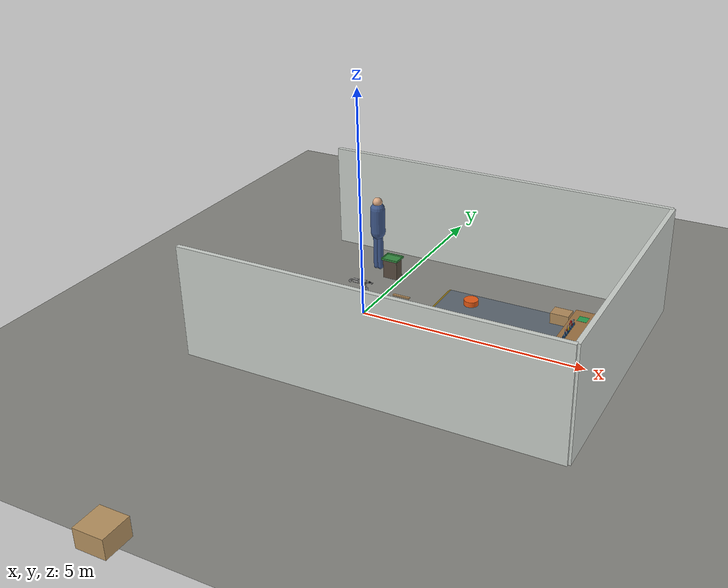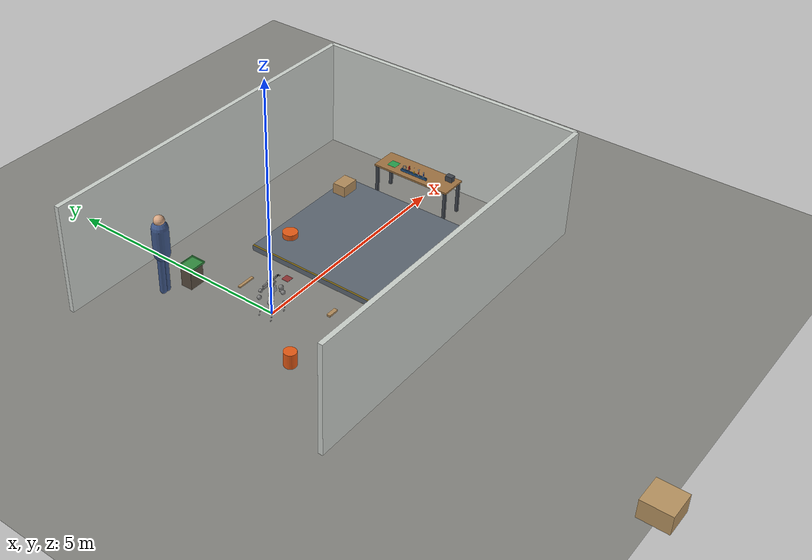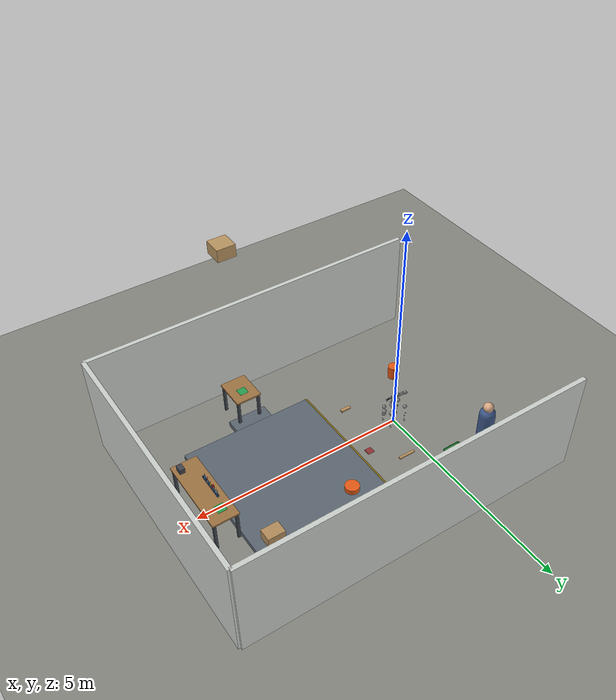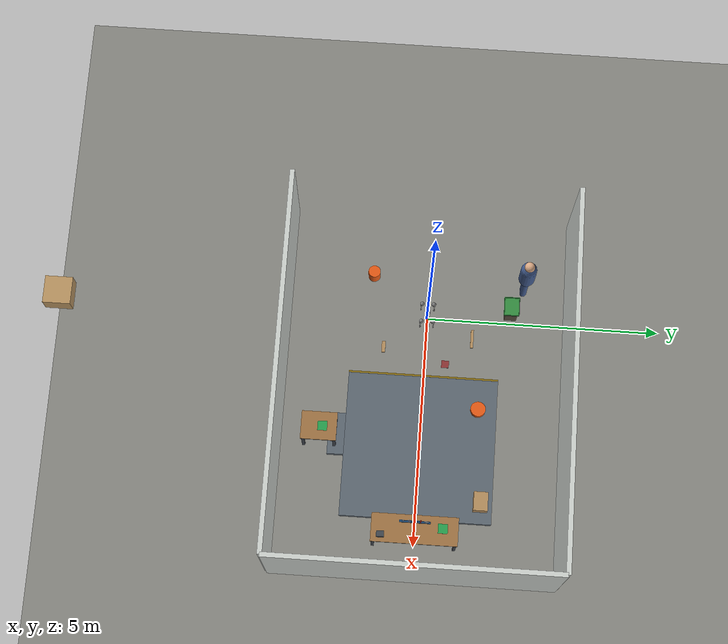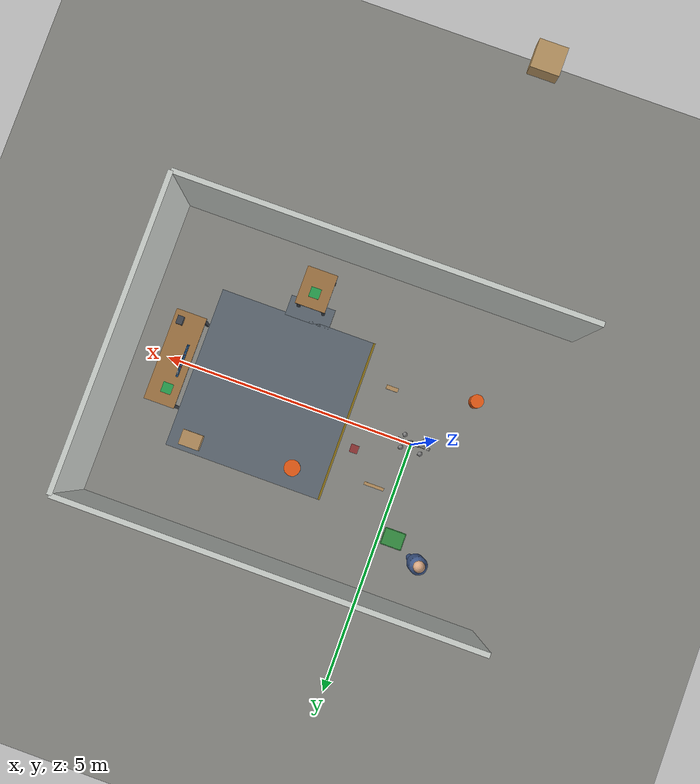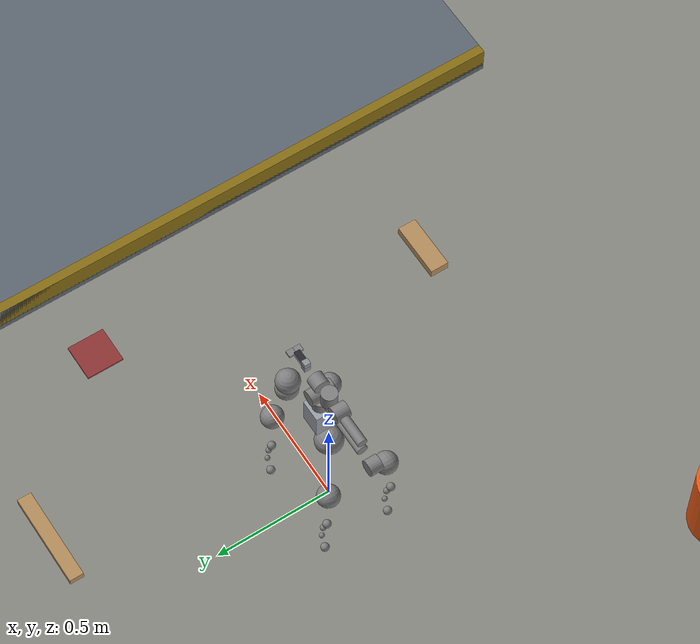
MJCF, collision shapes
<mujoco model="bring-me-the-10mm-wrench workshop">
  <!-- GENERATED by bw/sim/workshop.py -- edit that file, not this one. -->
  <include file="go2z1_scene_robot.xml"/>

  <option timestep="0.001" iterations="50" ls_iterations="20" impratio="10" cone="pyramidal"
          noslip_iterations="0"/>

  <statistic center="2.2 0 0.4" extent="4.0"/>
  <visual>
    <headlight diffuse="0.35 0.35 0.35" ambient="0.25 0.25 0.25" specular="0 0 0"/>
    <global azimuth="-150" elevation="-25" offwidth="1920" offheight="1080"/>
    <quality shadowsize="4096"/>
  </visual>

  <asset>
    <texture name="concrete" type="2d" builtin="flat" rgb1="0.52 0.52 0.50" rgb2="0.45 0.45 0.44" mark="random" random="0.08" markrgb="0.38 0.38 0.37" width="512" height="512"/>
    <material name="concrete" texture="concrete" texrepeat="6 6" texuniform="true" reflectance="0.05"/>
    <texture name="hazard" type="2d" builtin="checker" rgb1="0.95 0.75 0.05" rgb2="0.1 0.1 0.1" width="64" height="64"/>
    <material name="hazard" texture="hazard" texrepeat="12 1" texuniform="false"/>
    <material name="walkway" rgba="0.36 0.40 0.44 1" reflectance="0.02"/>
    <material name="bench" rgba="0.62 0.45 0.26 1"/>
    <material name="benchleg" rgba="0.25 0.27 0.30 1"/>
    <material name="tray" rgba="0.15 0.35 0.55 1"/>
    <material name="tray_rib" rgba="0.12 0.26 0.40 1"/>
    <material name="chrome" rgba="0.78 0.79 0.82 1" specular="0.8" shininess="0.9" reflectance="0.15"/>
    <material name="steel" rgba="0.45 0.46 0.5 1" specular="0.6"/>
    <material name="tape" rgba="0.62 0.64 0.66 1"/>
    <material name="wood" rgba="0.70 0.55 0.36 1"/>
    <material name="bucket" rgba="0.9 0.35 0.08 1"/>
    <material name="rag" rgba="0.55 0.2 0.2 1"/>
    <material name="wall" rgba="0.80 0.82 0.80 1"/>
    <material name="human" rgba="0.25 0.35 0.55 1"/>
    <material name="skin" rgba="0.85 0.66 0.52 1"/>
    <material name="box" rgba="0.72 0.58 0.38 1"/>
    <material name="zone" rgba="0.15 0.62 0.30 1"/>
  </asset>

  <worldbody>
    <light name="key" pos="2 -1 4" dir="0.1 0.2 -1" diffuse="0.7 0.7 0.68" castshadow="true"/>
    <light name="fill" pos="-1 2 3" dir="0.3 -0.3 -1" diffuse="0.35 0.35 0.38" castshadow="false"/>
    <light name="bench_lamp" pos="4.7 0 1.9" dir="0 0 -1" diffuse="0.45 0.43 0.38" castshadow="false"/>

    <geom name="floor" type="plane" size="8 8 0.05" pos="1.5 0 0" material="concrete" condim="3"
      friction="0.8 0.02 0.01" contype="7" conaffinity="7"/>
    <geom name="wall_back" type="box" size="0.05 3 1.2" pos="5.7 0 1.2" material="wall" contype="7" conaffinity="7"/>
    <geom name="wall_left" type="box" size="4 0.05 1.2" pos="1.7 3.0 1.2" material="wall" contype="7" conaffinity="7"/>
    <geom name="wall_right" type="box" size="4 0.05 1.2" pos="1.7 -3.0 1.2" material="wall" contype="7" conaffinity="7"/>

    <!-- 12 cm raised walkway: the one step -->
    <geom name="walkway" type="box" size="1.575 1.600 0.060"
      pos="2.875 0.000 0.060" material="walkway" condim="3"
      friction="0.8 0.02 0.01" contype="7" conaffinity="7"/>
    <geom name="walkway_edge" type="box" size="0.02 1.600 0.0605"
      pos="1.320 0.000 0.060" material="hazard" contype="0" conaffinity="0"/>
    <geom name="walkway_spur_b" type="box" size="0.450 0.200 0.060"
      pos="2.700 -1.750 0.060" material="walkway" condim="3"
      friction="0.8 0.02 0.01" contype="7" conaffinity="7"/>

    <!-- bench -->
    <body name="bench" pos="4.750 0.000 0">
      <geom name="bench_top" type="box" size="0.300 0.900 0.02" pos="0 0 0.730" material="bench" contype="7" conaffinity="7"/>
      <geom type="box" size="0.03 0.03 0.355" pos="0.250 0.850 0.355" material="benchleg" contype="7" conaffinity="7"/>
      <geom type="box" size="0.03 0.03 0.355" pos="0.250 -0.850 0.355" material="benchleg" contype="7" conaffinity="7"/>
      <geom type="box" size="0.03 0.03 0.355" pos="-0.250 0.850 0.355" material="benchleg" contype="7" conaffinity="7"/>
      <geom type="box" size="0.03 0.03 0.355" pos="-0.250 -0.850 0.355" material="benchleg" contype="7" conaffinity="7"/>
      <geom name="vise" type="box" size="0.06 0.08 0.06" pos="0.15 -0.7 0.810" material="benchleg" contype="7" conaffinity="7"/>
    </body>

    <!-- bench-top tool rack: tools stand in slots, grasped horizontally -->
    <body name="rack" pos="4.6 0.0 0.75">
      <geom name="rack_base" type="box" size="0.02 0.32 0.0025" pos="0 0 0.0025" material="tray" contype="7" conaffinity="7"/>
      <geom name="rack_front" type="box" size="0.0025 0.32 0.0225" pos="-0.017499999999999998 0 0.0275" material="tray" contype="3" conaffinity="3"/>
      <geom name="rack_back" type="box" size="0.0025 0.32 0.0225" pos="0.017499999999999998 0 0.0275" material="tray" contype="3" conaffinity="3"/>
      <geom name="divider0" type="box" size="0.02 0.0025 0.0225" pos="0 -0.300 0.0275" material="tray_rib" contype="3" conaffinity="3"/>
      <geom name="divider1" type="box" size="0.02 0.0025 0.0225" pos="0 -0.180 0.0275" material="tray_rib" contype="3" conaffinity="3"/>
      <geom name="divider2" type="box" size="0.02 0.0025 0.0225" pos="0 -0.060 0.0275" material="tray_rib" contype="3" conaffinity="3"/>
      <geom name="divider3" type="box" size="0.02 0.0025 0.0225" pos="0 0.060 0.0275" material="tray_rib" contype="3" conaffinity="3"/>
      <geom name="divider4" type="box" size="0.02 0.0025 0.0225" pos="0 0.180 0.0275" material="tray_rib" contype="3" conaffinity="3"/>
      <geom name="divider5" type="box" size="0.02 0.0025 0.0225" pos="0 0.300 0.0275" material="tray_rib" contype="3" conaffinity="3"/>
      <site name="tray_center" pos="0 0 0.05" size="0.01" group="4"/>
    </body>

    <!-- table B: the transfer destination. Bare top, no rack (see TABLE_B_* in workshop.py) -->
    <body name="table_b" pos="2.700 -2.125 0">
      <geom name="table_b_top" type="box" size="0.300 0.375 0.02" pos="0 0 0.730" material="bench" contype="7" conaffinity="7"/>
      <geom type="box" size="0.03 0.03 0.355" pos="0.250 0.325 0.355" material="benchleg" contype="7" conaffinity="7"/>
      <geom type="box" size="0.03 0.03 0.355" pos="0.250 -0.325 0.355" material="benchleg" contype="7" conaffinity="7"/>
      <geom type="box" size="0.03 0.03 0.355" pos="-0.250 0.325 0.355" material="benchleg" contype="7" conaffinity="7"/>
      <geom type="box" size="0.03 0.03 0.355" pos="-0.250 -0.325 0.355" material="benchleg" contype="7" conaffinity="7"/>
    </body>

    <!-- painted place zones: visual only (contype 0), so the place skill never fights a lip -->
    <geom name="zone_table_a" type="box" size="0.1 0.1 0.0012"
      pos="4.700 0.580 0.7512"
      material="zone" contype="0" conaffinity="0"/>
    <geom name="zone_table_b" type="box" size="0.1 0.1 0.0012"
      pos="2.700 -2.050 0.7512"
      material="zone" contype="0" conaffinity="0"/>
    <site name="zone_table_a_center" pos="4.700 0.580 0.750" size="0.01" group="4"/>
    <site name="zone_table_b_center" pos="2.700 -2.050 0.750" size="0.01" group="4"/>

    <!-- handoff: a low tray on the floor in front of the human -->
    <body name="handoff_stand" pos="-0.25 1.8 0">
      <geom type="box" size="0.17 0.13 0.223" pos="0 0 0.223" rgba="0.35 0.3 0.25 1" contype="7" conaffinity="7"/>
    </body>
    <body name="handoff" pos="-0.25 1.8 0.45">
      <geom name="handoff_floor" type="box" size="0.2 0.16 0.004" pos="0 0 0.004" rgba="0.2 0.55 0.25 1" contype="7" conaffinity="7"/>
      <geom type="box" size="0.2 0.006 0.02" pos="0 0.16 0.02" rgba="0.2 0.55 0.25 1" contype="7" conaffinity="7"/>
      <geom type="box" size="0.2 0.006 0.02" pos="0 -0.16 0.02" rgba="0.2 0.55 0.25 1" contype="7" conaffinity="7"/>
      <geom type="box" size="0.006 0.16 0.02" pos="0.2 0 0.02" rgba="0.2 0.55 0.25 1" contype="7" conaffinity="7"/>
      <geom type="box" size="0.006 0.16 0.02" pos="-0.2 0 0.02" rgba="0.2 0.55 0.25 1" contype="7" conaffinity="7"/>
      <site name="handoff_center" pos="0 0 0.01" size="0.01" group="4"/>
    </body>

    <!-- the human (static mannequin) -->
    <body name="human" pos="-0.75 2.05 0">
      <geom type="capsule" size="0.07 0.4" pos="0.05 0 0.45" material="human" contype="7" conaffinity="7"/>
      <geom type="capsule" size="0.07 0.4" pos="-0.05 0 0.45" material="human" contype="0" conaffinity="0"/>
      <geom type="capsule" size="0.17 0.28" pos="0 0 1.2" material="human" contype="7" conaffinity="7"/>
      <geom type="sphere" size="0.11" pos="0 0 1.66" material="skin" contype="0" conaffinity="0"/>
    </body>

    <!-- scenario 3: an obstacle box, parked until a scenario moves it -->
    <body name="obstacle" mocap="true" pos="0.0 -8.0 0.2">
      <geom name="obstacle_geom" type="box" size="0.3 0.3 0.2" material="box" contype="7" conaffinity="7"/>
    </body>

    <geom name="offcut_a" type="box" size="0.12 0.04 0.02" pos="0.7 -0.9 0.02" material="wood" contype="7" conaffinity="7"/>
    <geom name="offcut_b" type="box" size="0.20 0.03 0.015" pos="0.4 1.0 0.015" material="wood" contype="7" conaffinity="7"/>
    <geom name="bucket" type="cylinder" size="0.13 0.16" pos="-0.9 -1.2 0.16" material="bucket" contype="7" conaffinity="7"/>
    <geom name="reel" type="cylinder" size="0.16 0.06" pos="2.0 1.2 0.18" material="bucket" contype="7" conaffinity="7"/>
    <geom name="crate" type="box" size="0.2 0.15 0.12" pos="4.0 1.35 0.24" material="wood" contype="7" conaffinity="7"/>
    <geom name="rag" type="box" size="0.08 0.08 0.004" pos="1.0 0.45 0.004" material="rag" contype="7" conaffinity="7"/>

    <camera name="overview" pos="-1.4 -3.2 2.6" xyaxes="0.85 -0.53 0 0.28 0.45 0.85"/>
    <camera name="bench_view" pos="3.2 -1.6 1.5" xyaxes="0.62 -0.78 0 0.35 0.28 0.89"/>
    <!-- both INSIDE the room: wall_right sits at y = -3.0, so a camera beyond it sees a wall -->
    <camera name="table_b_view" pos="4.00 -2.80 1.50" xyaxes="0.476 0.774 0 -0.354 0.218 0.906"/>
    <camera name="scene_wide" pos="0.50 -2.75 2.60" xyaxes="0.545 -0.839 0 0.425 0.276 0.865"/>

    <body name="wrench_10mm" pos="4.6000 -0.2400 0.8550" quat="0.7071 0.0 0.7071 0.0">
      <freejoint name="wrench_10mm_free"/>
      <geom name="wrench_10mm_handle" type="box" size="0.052000000000000005 0.0065 0.004" material="chrome" mass="0.0270" contype="3" conaffinity="3" condim="6" friction="1.2 0.05 0.005" solref="0.003 1" solimp="0.99 0.9995 0.0005 0.5 2"/>
      <geom name="wrench_10mm_grip" type="box" size="0.0234 0.0077 0.0048" rgba="0.12 0.30 0.80 1" mass="0.0001" contype="0" conaffinity="0"/>
      <geom name="wrench_10mm_open" type="box" size="0.0091 0.013 0.004" pos="0.0598 0 0" material="chrome" mass="0.0090" contype="3" conaffinity="3" condim="6" friction="1.2 0.05 0.005" solref="0.003 1" solimp="0.99 0.9995 0.0005 0.5 2"/>
      <geom name="wrench_10mm_ring" type="cylinder" size="0.013 0.004" pos="-0.0598 0 0" material="chrome" mass="0.0090" contype="3" conaffinity="3" condim="6" friction="1.2 0.05 0.005" solref="0.003 1" solimp="0.99 0.9995 0.0005 0.5 2"/>
    </body>
    <body name="wrench_13mm" pos="4.6000 -0.1200 0.8550" quat="0.7071 0.0 0.7071 0.0">
      <freejoint name="wrench_13mm_free"/>
      <geom name="wrench_13mm_handle" type="box" size="0.067 0.008 0.0045" material="chrome" mass="0.0480" contype="3" conaffinity="3" condim="6" friction="1.2 0.05 0.005" solref="0.003 1" solimp="0.99 0.9995 0.0005 0.5 2"/>
      <geom name="wrench_13mm_grip" type="box" size="0.0302 0.0092 0.0053" rgba="0.75 0.12 0.10 1" mass="0.0001" contype="0" conaffinity="0"/>
      <geom name="wrench_13mm_open" type="box" size="0.0119 0.017 0.0045" pos="0.0772 0 0" material="chrome" mass="0.0160" contype="3" conaffinity="3" condim="6" friction="1.2 0.05 0.005" solref="0.003 1" solimp="0.99 0.9995 0.0005 0.5 2"/>
      <geom name="wrench_13mm_ring" type="cylinder" size="0.017 0.0045" pos="-0.0772 0 0" material="chrome" mass="0.0160" contype="3" conaffinity="3" condim="6" friction="1.2 0.05 0.005" solref="0.003 1" solimp="0.99 0.9995 0.0005 0.5 2"/>
    </body>
    <body name="screwdriver" pos="4.6000 0.0000 0.8550" quat="0.7071 0.0 -0.7071 0.0">
      <freejoint name="screwdriver_free"/>
      <geom name="screwdriver_handle" type="cylinder" size="0.0125 0.035" pos="-0.045 0 0" quat="0.7071 0 0.7071 0" rgba="0.95 0.78 0.05 1" mass="0.055" contype="3" conaffinity="3" condim="6" friction="1.2 0.05 0.005" solref="0.003 1" solimp="0.99 0.9995 0.0005 0.5 2"/>
      <geom name="screwdriver_shaft" type="capsule" size="0.0035 0.045" pos="0.04 0 0" quat="0.7071 0 0.7071 0" material="chrome" mass="0.015" contype="3" conaffinity="3" condim="6" friction="1.2 0.05 0.005" solref="0.003 1" solimp="0.99 0.9995 0.0005 0.5 2"/>
    </body>
    <body name="pliers" pos="4.6000 0.1200 0.8550" quat="-0.5 -0.5 -0.5 0.5">
      <freejoint name="pliers_free"/>
      <geom name="pliers_jaw" type="box" size="0.03 0.009 0.006" pos="0.05 0 0" material="steel" mass="0.07" contype="3" conaffinity="3" condim="6" friction="1.2 0.05 0.005" solref="0.003 1" solimp="0.99 0.9995 0.0005 0.5 2"/>
      <geom name="pliers_h1" type="box" size="0.05 0.007 0.007" pos="-0.03 0.016 0" euler="0 0 0.25" rgba="0.85 0.1 0.1 1" mass="0.055" contype="3" conaffinity="3" condim="6" friction="1.2 0.05 0.005" solref="0.003 1" solimp="0.99 0.9995 0.0005 0.5 2"/>
      <geom name="pliers_h2" type="box" size="0.05 0.007 0.007" pos="-0.03 -0.016 0" euler="0 0 -0.25" rgba="0.85 0.1 0.1 1" mass="0.055" contype="3" conaffinity="3" condim="6" friction="1.2 0.05 0.005" solref="0.003 1" solimp="0.99 0.9995 0.0005 0.5 2"/>
    </body>
    <body name="tape_roll" pos="4.6000 0.2400 0.8550" quat="0.7071 0.0 0.7071 0.0">
      <freejoint name="tape_roll_free"/>
      <geom name="tape_roll_seg0" type="box" size="0.0035 0.0095 0.0095" pos="0.0415 0.0000 0" euler="0 0 0.0000" material="tape" mass="0.00438" contype="3" conaffinity="3" condim="6" friction="1.2 0.05 0.005" solref="0.003 1" solimp="0.99 0.9995 0.0005 0.5 2"/>
      <geom name="tape_roll_seg1" type="box" size="0.0035 0.0095 0.0095" pos="0.0383 0.0159 0" euler="0 0 0.3927" material="tape" mass="0.00438" contype="3" conaffinity="3" condim="6" friction="1.2 0.05 0.005" solref="0.003 1" solimp="0.99 0.9995 0.0005 0.5 2"/>
      <geom name="tape_roll_seg2" type="box" size="0.0035 0.0095 0.0095" pos="0.0293 0.0293 0" euler="0 0 0.7854" material="tape" mass="0.00438" contype="3" conaffinity="3" condim="6" friction="1.2 0.05 0.005" solref="0.003 1" solimp="0.99 0.9995 0.0005 0.5 2"/>
      <geom name="tape_roll_seg3" type="box" size="0.0035 0.0095 0.0095" pos="0.0159 0.0383 0" euler="0 0 1.1781" material="tape" mass="0.00438" contype="3" conaffinity="3" condim="6" friction="1.2 0.05 0.005" solref="0.003 1" solimp="0.99 0.9995 0.0005 0.5 2"/>
      <geom name="tape_roll_seg4" type="box" size="0.0035 0.0095 0.0095" pos="0.0000 0.0415 0" euler="0 0 1.5708" material="tape" mass="0.00438" contype="3" conaffinity="3" condim="6" friction="1.2 0.05 0.005" solref="0.003 1" solimp="0.99 0.9995 0.0005 0.5 2"/>
      <geom name="tape_roll_seg5" type="box" size="0.0035 0.0095 0.0095" pos="-0.0159 0.0383 0" euler="0 0 1.9635" material="tape" mass="0.00438" contype="3" conaffinity="3" condim="6" friction="1.2 0.05 0.005" solref="0.003 1" solimp="0.99 0.9995 0.0005 0.5 2"/>
      <geom name="tape_roll_seg6" type="box" size="0.0035 0.0095 0.0095" pos="-0.0293 0.0293 0" euler="0 0 2.3562" material="tape" mass="0.00438" contype="3" conaffinity="3" condim="6" friction="1.2 0.05 0.005" solref="0.003 1" solimp="0.99 0.9995 0.0005 0.5 2"/>
      <geom name="tape_roll_seg7" type="box" size="0.0035 0.0095 0.0095" pos="-0.0383 0.0159 0" euler="0 0 2.7489" material="tape" mass="0.00438" contype="3" conaffinity="3" condim="6" friction="1.2 0.05 0.005" solref="0.003 1" solimp="0.99 0.9995 0.0005 0.5 2"/>
      <geom name="tape_roll_seg8" type="box" size="0.0035 0.0095 0.0095" pos="-0.0415 0.0000 0" euler="0 0 3.1416" material="tape" mass="0.00438" contype="3" conaffinity="3" condim="6" friction="1.2 0.05 0.005" solref="0.003 1" solimp="0.99 0.9995 0.0005 0.5 2"/>
      <geom name="tape_roll_seg9" type="box" size="0.0035 0.0095 0.0095" pos="-0.0383 -0.0159 0" euler="0 0 3.5343" material="tape" mass="0.00438" contype="3" conaffinity="3" condim="6" friction="1.2 0.05 0.005" solref="0.003 1" solimp="0.99 0.9995 0.0005 0.5 2"/>
      <geom name="tape_roll_seg10" type="box" size="0.0035 0.0095 0.0095" pos="-0.0293 -0.0293 0" euler="0 0 3.9270" material="tape" mass="0.00438" contype="3" conaffinity="3" condim="6" friction="1.2 0.05 0.005" solref="0.003 1" solimp="0.99 0.9995 0.0005 0.5 2"/>
      <geom name="tape_roll_seg11" type="box" size="0.0035 0.0095 0.0095" pos="-0.0159 -0.0383 0" euler="0 0 4.3197" material="tape" mass="0.00438" contype="3" conaffinity="3" condim="6" friction="1.2 0.05 0.005" solref="0.003 1" solimp="0.99 0.9995 0.0005 0.5 2"/>
      <geom name="tape_roll_seg12" type="box" size="0.0035 0.0095 0.0095" pos="-0.0000 -0.0415 0" euler="0 0 4.7124" material="tape" mass="0.00438" contype="3" conaffinity="3" condim="6" friction="1.2 0.05 0.005" solref="0.003 1" solimp="0.99 0.9995 0.0005 0.5 2"/>
      <geom name="tape_roll_seg13" type="box" size="0.0035 0.0095 0.0095" pos="0.0159 -0.0383 0" euler="0 0 5.1051" material="tape" mass="0.00438" contype="3" conaffinity="3" condim="6" friction="1.2 0.05 0.005" solref="0.003 1" solimp="0.99 0.9995 0.0005 0.5 2"/>
      <geom name="tape_roll_seg14" type="box" size="0.0035 0.0095 0.0095" pos="0.0293 -0.0293 0" euler="0 0 5.4978" material="tape" mass="0.00438" contype="3" conaffinity="3" condim="6" friction="1.2 0.05 0.005" solref="0.003 1" solimp="0.99 0.9995 0.0005 0.5 2"/>
      <geom name="tape_roll_seg15" type="box" size="0.0035 0.0095 0.0095" pos="0.0383 -0.0159 0" euler="0 0 5.8905" material="tape" mass="0.00438" contype="3" conaffinity="3" condim="6" friction="1.2 0.05 0.005" solref="0.003 1" solimp="0.99 0.9995 0.0005 0.5 2"/>
    </body>
  </worldbody>
  <keyframe>
    <key name="home" qpos="0 0 0.3 1 0 0 0 0 0.9 -1.8 0 0.9 -1.8 0 0.9 -1.8 0 0.9 -1.8 0 0 -0.05 0 0 0 0 0 4.6 -0.24 0.855 0.70711 0 0.70711 0 4.6 -0.12 0.855 0.70711 0 0.70711 0 4.6 0 0.855 0.70711 0 -0.70711 0 4.6 0.12 0.855 -0.5 -0.5 -0.5 0.5 4.6 0.24 0.855 0.70711 0 0.70711 0" ctrl="0 0.9 -1.8 0 0.9 -1.8 0 0.9 -1.8 0 0.9 -1.8 0 0 -0.05 0 0 0 0"/>
    <key name="extended" qpos="0 0 0.3 1 0 0 0 0 0.9 -1.8 0 0.9 -1.8 0 0.9 -1.8 0 0.9 -1.8 0 1.35 -0.45 -0.9 0 0 0.03 0 4.6 -0.24 0.855 0.70711 0 0.70711 0 4.6 -0.12 0.855 0.70711 0 0.70711 0 4.6 0 0.855 0.70711 0 -0.70711 0 4.6 0.12 0.855 -0.5 -0.5 -0.5 0.5 4.6 0.24 0.855 0.70711 0 0.70711 0" ctrl="0 0.9 -1.8 0 0.9 -1.8 0 0.9 -1.8 0 0.9 -1.8 0 1.35 -0.45 -0.9 0 0 0.03"/>
    <key name="ready" qpos="0 0 0.3 1 0 0 0 0 0.9 -1.8 0 0.9 -1.8 0 0.9 -1.8 0 0.9 -1.8 0 0.9 -1.2 0.3 0 0 0.035 0 4.6 -0.24 0.855 0.70711 0 0.70711 0 4.6 -0.12 0.855 0.70711 0 0.70711 0 4.6 0 0.855 0.70711 0 -0.70711 0 4.6 0.12 0.855 -0.5 -0.5 -0.5 0.5 4.6 0.24 0.855 0.70711 0 0.70711 0" ctrl="0 0.9 -1.8 0 0.9 -1.8 0 0.9 -1.8 0 0.9 -1.8 0 0.9 -1.2 0.3 0 0 0.035"/>
  </keyframe>
</mujoco>

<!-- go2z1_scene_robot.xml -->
<mujoco model="go2">
  <compiler angle="radian" meshdir="assets/"/>

  <option impratio="100" iterations="1" ls_iterations="5"/>

  <default>
    <default class="go2">
      <joint armature="0.01" damping="2"/>
      <geom condim="1" friction="0.6" margin="0.001"/>
      <general forcerange="-24 24" biastype="affine" gainprm="50" biasprm="0 -50 -0.5"/>
      <default class="abduction">
        <joint range="-1.0472 1.0472"/>
        <general ctrlrange="-0.9472 0.9472"/>
      </default>
      <default class="hip">
        <joint range="-1.5708 3.4907"/>
        <general ctrlrange="-1.4 2.5"/>
      </default>
      <default class="knee">
        <joint range="-2.7227 -0.83776"/>
        <general ctrlrange="-2.6227 -0.84776"/>
      </default>
      <default class="visual">
        <geom type="mesh" contype="0" conaffinity="0" group="2"/>
      </default>
      <default class="go2foot">
        <geom rgba="0.231373 0.380392 0.705882 1"/>
        <site group="1"/>
      </default>
      <default class="collision">
        <geom group="3"/>
        <default class="foot">
          <geom size="0.0175 0 0" condim="6" priority="1" friction="0.8 0.02 0.01" solimp="0.015 1 0.031"/>
        </default>
      </default>
    </default>
    <default class="arm_main">
      <default class="arm_z1">
        <joint damping="1" frictionloss="1"/>
        <general forcerange="-30 30" biastype="affine" gainprm="1000" biasprm="0 -1000 -100"/>
        <default class="arm_visual">
          <geom type="mesh" contype="0" conaffinity="0" group="2"/>
        </default>
        <default class="arm_collision">
          <geom type="cylinder" group="3"/>
          <default class="arm_z1_gripper_stator_collision">
            <geom type="mesh"/>
          </default>
          <default class="arm_z1_gripper_stator_pad_collision_1">
            <geom size="0.014 0.015 0.004" type="box"/>
          </default>
          <default class="arm_z1_gripper_stator_pad_collision_2">
            <geom size="0.014 0.015 0.004" type="box"/>
          </default>
          <default class="arm_z1_gripper_mover_collision">
            <geom type="mesh"/>
          </default>
          <default class="arm_z1_gripper_mover_pad_collision_1">
            <geom size="0.014 0.015 0.004" type="box"/>
          </default>
          <default class="arm_z1_gripper_mover_pad_collision_2">
            <geom size="0.014 0.015 0.004" type="box"/>
          </default>
        </default>
      </default>
    </default>
  </default>

  <asset>
    <material name="metal" rgba="0.9 0.95 0.95 1"/>
    <material name="black" rgba="0 0 0 1"/>
    <material name="white"/>
    <material name="gray" rgba="0.671705 0.692426 0.77427 1"/>
    <mesh name="base_0" file="base_0.obj"/>
    <mesh name="base_1" file="base_1.obj"/>
    <mesh name="base_2" file="base_2.obj"/>
    <mesh name="base_3" file="base_3.obj"/>
    <mesh name="base_4" file="base_4.obj"/>
    <mesh name="hip_0" file="hip_0.obj"/>
    <mesh name="hip_1" file="hip_1.obj"/>
    <mesh name="thigh_0" file="thigh_0.obj"/>
    <mesh name="thigh_1" file="thigh_1.obj"/>
    <mesh name="thigh_mirror_0" file="thigh_mirror_0.obj"/>
    <mesh name="thigh_mirror_1" file="thigh_mirror_1.obj"/>
    <mesh name="calf_0" file="calf_0.obj"/>
    <mesh name="calf_1" file="calf_1.obj"/>
    <mesh name="calf_mirror_0" file="calf_mirror_0.obj"/>
    <mesh name="calf_mirror_1" file="calf_mirror_1.obj"/>
    <mesh name="foot" file="foot.obj"/>
    <mesh name="arm_z1_Link00" file="z1_Link00.stl"/>
    <mesh name="arm_z1_Link01" file="z1_Link01.stl"/>
    <mesh name="arm_z1_Link02" file="z1_Link02.stl"/>
    <mesh name="arm_z1_Link03" file="z1_Link03.stl"/>
    <mesh name="arm_z1_Link04" file="z1_Link04.stl"/>
    <mesh name="arm_z1_Link05" file="z1_Link05.stl"/>
    <mesh name="arm_z1_Link06" file="z1_Link06.stl"/>
    <mesh name="arm_z1_GripperStator" file="z1_GripperStator.stl"/>
    <mesh name="arm_z1_GripperStator_col_1" file="z1_GripperStator_col_1.stl"/>
    <mesh name="arm_z1_GripperStator_col_2" file="z1_GripperStator_col_2.stl"/>
    <mesh name="arm_z1_GripperStator_col_3" file="z1_GripperStator_col_3.stl"/>
    <mesh name="arm_z1_GripperStator_col_4" file="z1_GripperStator_col_4.stl"/>
    <mesh name="arm_z1_GripperStator_col_5" file="z1_GripperStator_col_5.stl"/>
    <mesh name="arm_z1_GripperStator_col_6" file="z1_GripperStator_col_6.stl"/>
    <mesh name="arm_z1_GripperMover" file="z1_GripperMover.stl"/>
    <mesh name="arm_z1_GripperMover_col_1" file="z1_GripperMover_col_1.stl"/>
    <mesh name="arm_z1_GripperMover_col_2" file="z1_GripperMover_col_2.stl"/>
    <mesh name="arm_z1_GripperMover_col_3" file="z1_GripperMover_col_3.stl"/>
    <mesh name="arm_z1_GripperMover_col_4" file="z1_GripperMover_col_4.stl"/>
    <mesh name="arm_z1_GripperMover_col_5" file="z1_GripperMover_col_5.stl"/>
  </asset>

  <worldbody>
    <body name="base" childclass="go2" pos="0 0 0.445">
      <inertial pos="0.021112 0 -0.005366" quat="-0.000543471 0.713435 -0.00173769 0.700719" mass="6.921" diaginertia="0.107027 0.0980771 0.0244531"/>
      <joint type="free" armature="0" damping="0"/>
      <geom class="visual" material="black" mesh="base_0"/>
      <geom class="visual" material="black" mesh="base_1"/>
      <geom class="visual" material="black" mesh="base_2"/>
      <geom class="visual" material="white" mesh="base_3"/>
      <geom class="visual" material="gray" mesh="base_4"/>
      <geom class="collision" size="0.057"/>
      <geom class="collision" size="0.05" pos="0.285 0 0.01"/>
      <geom class="collision" size="0.047" pos="0.293 0 -0.06"/>
      <site name="imu" pos="-0.02557 0 0.04232"/>
      <site name="head_cam_site" pos="0.33 0 0.04" group="4"/>
      <camera name="track" pos="0.846 -1.465 0.916" quat="0.791164 0.554139 0.148485 0.211997" mode="trackcom"/>
      <camera name="head" pos="0.33 0 0.04" quat="0.579228 0.40558 -0.40558 -0.579228" fovy="75"/>
      <camera name="mast" pos="-0.1 -0.12 0.75" quat="0.657918 0.403173 -0.33235 -0.542346" fovy="70"/>
      <body name="FL_hip" pos="0.1934 0.0465 0">
        <inertial pos="-0.0054 0.00194 -0.000105" quat="0.497014 0.499245 0.505462 0.498237" mass="0.678" diaginertia="0.00088403 0.000596003 0.000479967"/>
        <joint name="FL_hip_joint" class="abduction" pos="0 0 0" axis="1 0 0"/>
        <geom class="visual" material="metal" mesh="hip_0"/>
        <geom class="visual" material="gray" mesh="hip_1"/>
        <geom class="collision" size="0.046" pos="0 0.08 0" quat="0.707107 0.707107 0 0"/>
        <body name="FL_thigh" pos="0 0.0955 0">
          <inertial pos="-0.00374 -0.0223 -0.0327" quat="0.829533 0.0847635 -0.0200632 0.551623" mass="1.152" diaginertia="0.00594973 0.00584149 0.000878787"/>
          <joint name="FL_thigh_joint" class="hip" pos="0 0 0" axis="0 1 0"/>
          <geom class="visual" material="metal" mesh="thigh_0"/>
          <geom class="visual" material="gray" mesh="thigh_1"/>
          <geom class="collision" size="0.017" pos="-0.015 0 -0.1955" quat="0.707107 0 0.707107 0"/>
          <body name="FL_calf" pos="0 0 -0.213">
            <inertial pos="0.00629595 -0.000622121 -0.141417" quat="0.710672 0.00154099 -0.00450087 0.703508" mass="0.241352" diaginertia="0.0014901 0.00146356 5.31397e-05"/>
            <joint name="FL_calf_joint" class="knee" pos="0 0 0" axis="0 1 0"/>
            <geom class="visual" material="gray" mesh="calf_0"/>
            <geom class="visual" material="black" mesh="calf_1"/>
            <geom class="collision" size="0.012" pos="0.008 0 -0.06" quat="0.994493 0 -0.104807 0"/>
            <geom class="collision" size="0.011" pos="0.02 0 -0.148" quat="0.999688 0 0.0249974 0"/>
            <geom class="visual" pos="0 0 -0.213" quat="1 0 0 0" material="black" mesh="foot"/>
            <geom name="FL" class="foot" pos="-0.002 0 -0.213"/>
            <site name="FL_foot" class="go2foot" pos="-0.002 0 -0.213"/>
          </body>
        </body>
      </body>
      <body name="FR_hip" pos="0.1934 -0.0465 0">
        <inertial pos="-0.0054 -0.00194 -0.000105" quat="0.498237 0.505462 0.499245 0.497014" mass="0.678" diaginertia="0.00088403 0.000596003 0.000479967"/>
        <joint name="FR_hip_joint" class="abduction" pos="0 0 0" axis="1 0 0"/>
        <geom class="visual" quat="4.63268e-05 1 0 0" material="metal" mesh="hip_0"/>
        <geom class="visual" quat="4.63268e-05 1 0 0" material="gray" mesh="hip_1"/>
        <geom class="collision" size="0.046" pos="0 -0.08 0" quat="0.707107 0.707107 0 0"/>
        <body name="FR_thigh" pos="0 -0.0955 0">
          <inertial pos="-0.00374 0.0223 -0.0327" quat="0.551623 -0.0200632 0.0847635 0.829533" mass="1.152" diaginertia="0.00594973 0.00584149 0.000878787"/>
          <joint name="FR_thigh_joint" class="hip" pos="0 0 0" axis="0 1 0"/>
          <geom class="visual" material="metal" mesh="thigh_mirror_0"/>
          <geom class="visual" material="gray" mesh="thigh_mirror_1"/>
          <geom class="collision" size="0.017" pos="-0.015 0 -0.1955" quat="0.707107 0 0.707107 0"/>
          <body name="FR_calf" pos="0 0 -0.213">
            <inertial pos="0.00629595 0.000622121 -0.141417" quat="0.703508 -0.00450087 0.00154099 0.710672" mass="0.241352" diaginertia="0.0014901 0.00146356 5.31397e-05"/>
            <joint name="FR_calf_joint" class="knee" pos="0 0 0" axis="0 1 0"/>
            <geom class="visual" material="gray" mesh="calf_mirror_0"/>
            <geom class="visual" material="black" mesh="calf_mirror_1"/>
            <geom class="collision" size="0.013" pos="0.01 0 -0.06" quat="0.995004 0 -0.0998334 0"/>
            <geom class="collision" size="0.011" pos="0.02 0 -0.148" quat="0.999688 0 0.0249974 0"/>
            <geom class="visual" pos="0 0 -0.213" quat="1 0 0 0" material="black" mesh="foot"/>
            <geom name="FR" class="foot" pos="-0.002 0 -0.213"/>
            <site name="FR_foot" class="go2foot" pos="-0.002 0 -0.213"/>
          </body>
        </body>
      </body>
      <body name="RL_hip" pos="-0.1934 0.0465 0">
        <inertial pos="0.0054 0.00194 -0.000105" quat="0.505462 0.498237 0.497014 0.499245" mass="0.678" diaginertia="0.00088403 0.000596003 0.000479967"/>
        <joint name="RL_hip_joint" class="abduction" pos="0 0 0" axis="1 0 0"/>
        <geom class="visual" quat="4.63268e-05 0 1 0" material="metal" mesh="hip_0"/>
        <geom class="visual" quat="4.63268e-05 0 1 0" material="gray" mesh="hip_1"/>
        <geom class="collision" size="0.046" pos="0 0.08 0" quat="0.707107 0.707107 0 0"/>
        <body name="RL_thigh" pos="0 0.0955 0">
          <inertial pos="-0.00374 -0.0223 -0.0327" quat="0.829533 0.0847635 -0.0200632 0.551623" mass="1.152" diaginertia="0.00594973 0.00584149 0.000878787"/>
          <joint name="RL_thigh_joint" class="hip" pos="0 0 0" axis="0 1 0"/>
          <geom class="visual" material="metal" mesh="thigh_0"/>
          <geom class="visual" material="gray" mesh="thigh_1"/>
          <geom class="collision" size="0.017" pos="-0.015 0 -0.1955" quat="0.707107 0 0.707107 0"/>
          <body name="RL_calf" pos="0 0 -0.213">
            <inertial pos="0.00629595 -0.000622121 -0.141417" quat="0.710672 0.00154099 -0.00450087 0.703508" mass="0.241352" diaginertia="0.0014901 0.00146356 5.31397e-05"/>
            <joint name="RL_calf_joint" class="knee" pos="0 0 0" axis="0 1 0"/>
            <geom class="visual" material="gray" mesh="calf_0"/>
            <geom class="visual" material="black" mesh="calf_1"/>
            <geom class="collision" size="0.013" pos="0.01 0 -0.06" quat="0.995004 0 -0.0998334 0"/>
            <geom class="collision" size="0.011" pos="0.02 0 -0.148" quat="0.999688 0 0.0249974 0"/>
            <geom class="visual" pos="0 0 -0.213" quat="1 0 0 0" material="black" mesh="foot"/>
            <geom name="RL" class="foot" pos="-0.002 0 -0.213"/>
            <site name="RL_foot" class="go2foot" pos="-0.002 0 -0.213"/>
          </body>
        </body>
      </body>
      <body name="RR_hip" pos="-0.1934 -0.0465 0">
        <inertial pos="0.0054 -0.00194 -0.000105" quat="0.499245 0.497014 0.498237 0.505462" mass="0.678" diaginertia="0.00088403 0.000596003 0.000479967"/>
        <joint name="RR_hip_joint" class="abduction" pos="0 0 0" axis="1 0 0"/>
        <geom class="visual" quat="2.14617e-09 4.63268e-05 4.63268e-05 -1" material="metal" mesh="hip_0"/>
        <geom class="visual" quat="2.14617e-09 4.63268e-05 4.63268e-05 -1" material="gray" mesh="hip_1"/>
        <geom class="collision" size="0.046" pos="0 -0.08 0" quat="0.707107 0.707107 0 0"/>
        <body name="RR_thigh" pos="0 -0.0955 0">
          <inertial pos="-0.00374 0.0223 -0.0327" quat="0.551623 -0.0200632 0.0847635 0.829533" mass="1.152" diaginertia="0.00594973 0.00584149 0.000878787"/>
          <joint name="RR_thigh_joint" class="hip" pos="0 0 0" axis="0 1 0"/>
          <geom class="visual" material="metal" mesh="thigh_mirror_0"/>
          <geom class="visual" material="gray" mesh="thigh_mirror_1"/>
          <geom class="collision" size="0.017" pos="-0.015 0 -0.1955" quat="0.707107 0 0.707107 0"/>
          <body name="RR_calf" pos="0 0 -0.213">
            <inertial pos="0.00629595 0.000622121 -0.141417" quat="0.703508 -0.00450087 0.00154099 0.710672" mass="0.241352" diaginertia="0.0014901 0.00146356 5.31397e-05"/>
            <joint name="RR_calf_joint" class="knee" pos="0 0 0" axis="0 1 0"/>
            <geom class="visual" material="gray" mesh="calf_mirror_0"/>
            <geom class="visual" material="black" mesh="calf_mirror_1"/>
            <geom class="collision" size="0.013" pos="0.01 0 -0.06" quat="0.995004 0 -0.0998334 0"/>
            <geom class="collision" size="0.011" pos="0.02 0 -0.148" quat="0.999688 0 0.0249974 0"/>
            <geom class="visual" pos="0 0 -0.213" quat="1 0 0 0" material="black" mesh="foot"/>
            <geom name="RR" class="foot" pos="-0.002 0 -0.213"/>
            <site name="RR_foot" class="go2foot" pos="-0.002 0 -0.213"/>
          </body>
        </body>
      </body>
      <body name="arm_pedestal" pos="0.06 0 0.117">
        <geom size="0.045 0.045 0.06" type="box" contype="4" conaffinity="4" condim="3" group="2" friction="0.8 0.02 0.002" mass="0.4" rgba="0.6 0.62 0.66 1"/>
      </body>
      <body name="arm_link00" childclass="arm_z1" pos="0.06 0 0.177" gravcomp="1">
        <inertial pos="-0.00334984 -0.00013615 0.0249584" quat="-0.00692194 0.682592 0.00133293 0.730766" mass="0.472475" diaginertia="0.000531375 0.000415207 0.000378658"/>
        <geom class="arm_visual" mesh="arm_z1_Link00"/>
        <geom class="arm_collision" size="0.0325 0.0255" pos="0 0 0.0255" contype="4" conaffinity="4" friction="0.8 0.02 0.002"/>
        <body name="arm_link01" pos="0 0 0.0585" gravcomp="1">
          <inertial pos="2.47e-06 -0.00025198 0.0231717" quat="0.708578 0.705633 0.000281462 -0.000355927" mass="0.673326" diaginertia="0.00128328 0.000839362 0.000719308"/>
          <joint name="arm_joint1" pos="0 0 0" axis="0 0 1" range="-2.61799 2.61799" armature="0.08" damping="20"/>
          <geom class="arm_visual" mesh="arm_z1_Link01"/>
          <body name="arm_link02" pos="0 0 0.045" gravcomp="1">
            <inertial pos="-0.110126 0.00240029 0.00158266" quat="0.00748058 0.707092 -0.0114473 0.70699" mass="1.19132" diaginertia="0.0246612 0.0243113 0.00100468"/>
            <joint name="arm_joint2" pos="0 0 0" axis="0 1 0" range="0 2.96706" armature="0.08" damping="30"/>
            <geom class="arm_visual" mesh="arm_z1_Link02"/>
            <geom class="arm_collision" size="0.0325 0.051" quat="0.707107 0.707107 0 0" contype="4" conaffinity="4" friction="0.8 0.02 0.002"/>
            <geom class="arm_collision" size="0.0225 0.1175" pos="-0.1625 0 0" quat="0.707107 0 0.707107 0" contype="4" conaffinity="4" friction="0.8 0.02 0.002"/>
            <geom class="arm_collision" size="0.0325 0.0255" pos="-0.35 0 0" quat="0.707107 0.707107 0 0" contype="4" conaffinity="4" friction="0.8 0.02 0.002"/>
            <body name="arm_link03" pos="-0.35 0 0" gravcomp="1">
              <inertial pos="0.106092 -0.00541815 0.0347638" quat="0.540557 0.443575 0.426319 0.573839" mass="0.839409" diaginertia="0.00954365 0.00938711 0.000558432"/>
              <joint name="arm_joint3" pos="0 0 0" axis="0 1 0" range="-2.87979 0" armature="0.08" damping="20"/>
              <geom class="arm_visual" mesh="arm_z1_Link03"/>
              <geom class="arm_collision" size="0.02 0.058" pos="0.128 0 0.055" quat="0.707107 0 0.707107 0" contype="4" conaffinity="4" friction="0.8 0.02 0.002"/>
              <geom class="arm_collision" size="0.0325 0.0295" pos="0.2205 0 0.055" quat="0.5 -0.5 0.5 0.5" contype="4" conaffinity="4" friction="0.8 0.02 0.002"/>
              <body name="arm_link04" pos="0.218 0 0.057" gravcomp="1">
                <inertial pos="0.0436668 0.00364738 -0.00170192" quat="0.0390835 0.726445 -0.0526787 0.684087" mass="0.564046" diaginertia="0.000981656 0.00094053 0.000302655"/>
                <joint name="arm_joint4" pos="0 0 0" axis="0 1 0" range="-1.51844 1.51844" armature="0.08" damping="20"/>
                <geom class="arm_visual" mesh="arm_z1_Link04"/>
                <geom class="arm_collision" size="0.0325 0.0335" pos="0.072 0 0" contype="4" conaffinity="4" friction="0.8 0.02 0.002"/>
                <body name="arm_link05" pos="0.07 0 0" gravcomp="1">
                  <inertial pos="0.0312153 0 0.00646316" quat="0.462205 0.535209 0.53785 0.45895" mass="0.389385" diaginertia="0.000558961 0.000547317 0.000167332"/>
                  <joint name="arm_joint5" pos="0 0 0" axis="0 0 1" range="-1.3439 1.3439" armature="0.08" damping="20"/>
                  <geom class="arm_visual" mesh="arm_z1_Link05"/>
                  <body name="arm_link06" pos="0.0492 0 0" gravcomp="1">
                    <inertial pos="0.0241569 -0.00017355 -0.00143876" quat="0.998779 0.0457735 -0.00663717 0.0173548" mass="0.288758" diaginertia="0.00018333 0.000147464 0.000146786"/>
                    <joint name="arm_joint6" pos="0 0 0" axis="1 0 0" range="-2.79253 2.79253" armature="0.08" damping="20"/>
                    <geom class="arm_visual" mesh="arm_z1_Link06"/>
                    <geom class="arm_collision" size="0.0325 0.0255" pos="0.0255 0 0" quat="0.707107 0 0.707107 0" contype="4" conaffinity="4" friction="0.8 0.02 0.002"/>
                    <geom class="arm_visual" pos="0.051 0 0" quat="1 0 0 0" mesh="arm_z1_GripperStator"/>
                    <geom class="arm_z1_gripper_stator_collision" pos="0.051 0 0" quat="1 0 0 0" contype="0" conaffinity="0" friction="0.8 0.02 0.002" mesh="arm_z1_GripperStator_col_1"/>
                    <geom class="arm_z1_gripper_stator_collision" pos="0.051 0 0" quat="1 0 0 0" contype="0" conaffinity="0" friction="0.8 0.02 0.002" mesh="arm_z1_GripperStator_col_2"/>
                    <geom class="arm_z1_gripper_stator_collision" pos="0.051 0 0" quat="1 0 0 0" contype="0" conaffinity="0" friction="0.8 0.02 0.002" mesh="arm_z1_GripperStator_col_3"/>
                    <geom class="arm_z1_gripper_stator_collision" pos="0.051 0 0" quat="1 0 0 0" contype="0" conaffinity="0" friction="0.8 0.02 0.002" mesh="arm_z1_GripperStator_col_4"/>
                    <geom class="arm_z1_gripper_stator_collision" pos="0.051 0 0" quat="1 0 0 0" contype="0" conaffinity="0" friction="0.8 0.02 0.002" mesh="arm_z1_GripperStator_col_5"/>
                    <geom class="arm_z1_gripper_stator_collision" pos="0.051 0 0" quat="1 0 0 0" contype="0" conaffinity="0" friction="0.8 0.02 0.002" mesh="arm_z1_GripperStator_col_6"/>
                    <geom class="arm_z1_gripper_stator_pad_collision_1" pos="0.186 -0.015 -0.0125" contype="4" conaffinity="4" friction="0.8 0.02 0.002"/>
                    <geom class="arm_z1_gripper_stator_pad_collision_2" pos="0.186 0.015 -0.0125" contype="4" conaffinity="4" friction="0.8 0.02 0.002"/>
                    <site name="ee" pos="0.145 0 0" size="0.01" group="1" rgba="1 0.3 0.3 1"/>
                    <camera name="wrist" pos="0 0 0.11" quat="0.541675 0.454519 -0.454519 -0.541675" fovy="75"/>
                    <body name="arm_finger_a" pos="0.1 0 0">
                      <joint name="arm_finger_a" pos="0 0 0" axis="0 0 1" type="slide" range="0 0.038" armature="0.004" damping="8"/>
                      <geom name="finger_a_pad" size="0.026 0.013 0.005" pos="0.045 0 0.005" type="box" contype="2" conaffinity="2" condim="6" group="2" friction="2 0.25 0.02" solref="0.002" solimp="0.995 0.9995 0.0002" rgba="0.15 0.15 0.17 1"/>
                      <geom name="finger_a_back" size="0.012 0.013 0.012" pos="0.008 0 0.012" type="box" contype="0" conaffinity="0" group="2" friction="0.8 0.02 0.002" rgba="0.55 0.57 0.6 1"/>
                    </body>
                    <body name="arm_finger_b" pos="0.1 0 0">
                      <joint name="arm_finger_b" pos="0 0 0" axis="0 0 -1" type="slide" range="0 0.038" armature="0.004" damping="8"/>
                      <geom name="finger_b_pad" size="0.026 0.013 0.005" pos="0.045 0 -0.005" type="box" contype="2" conaffinity="2" condim="6" group="2" friction="2 0.25 0.02" solref="0.002" solimp="0.995 0.9995 0.0002" rgba="0.15 0.15 0.17 1"/>
                      <geom name="finger_b_back" size="0.012 0.013 0.012" pos="0.008 0 -0.012" type="box" contype="0" conaffinity="0" group="2" friction="0.8 0.02 0.002" rgba="0.55 0.57 0.6 1"/>
                    </body>
                  </body>
                </body>
              </body>
            </body>
          </body>
        </body>
      </body>
    </body>
  </worldbody>

  <actuator>
    <general name="FL_hip" class="abduction" joint="FL_hip_joint"/>
    <general name="FL_thigh" class="hip" joint="FL_thigh_joint"/>
    <general name="FL_calf" class="knee" joint="FL_calf_joint"/>
    <general name="FR_hip" class="abduction" joint="FR_hip_joint"/>
    <general name="FR_thigh" class="hip" joint="FR_thigh_joint"/>
    <general name="FR_calf" class="knee" joint="FR_calf_joint"/>
    <general name="RL_hip" class="abduction" joint="RL_hip_joint"/>
    <general name="RL_thigh" class="hip" joint="RL_thigh_joint"/>
    <general name="RL_calf" class="knee" joint="RL_calf_joint"/>
    <general name="RR_hip" class="abduction" joint="RR_hip_joint"/>
    <general name="RR_thigh" class="hip" joint="RR_thigh_joint"/>
    <general name="RR_calf" class="knee" joint="RR_calf_joint"/>
    <general name="arm_motor1" class="arm_z1" joint="arm_joint1" ctrlrange="-2.61799 2.61799" gainprm="1500" biasprm="0 -1500 0"/>
    <general name="arm_motor2" class="arm_z1" joint="arm_joint2" ctrlrange="0 2.96706" forcerange="-60 60" gainprm="2000" biasprm="0 -2000 0"/>
    <general name="arm_motor3" class="arm_z1" joint="arm_joint3" ctrlrange="-2.87979 0" gainprm="1500" biasprm="0 -1500 0"/>
    <general name="arm_motor4" class="arm_z1" joint="arm_joint4" ctrlrange="-1.51844 1.51844" gainprm="1500" biasprm="0 -1500 0"/>
    <general name="arm_motor5" class="arm_z1" joint="arm_joint5" ctrlrange="-1.3439 1.3439" gainprm="1500" biasprm="0 -1500 0"/>
    <general name="arm_motor6" class="arm_z1" joint="arm_joint6" ctrlrange="-2.79253 2.79253" gainprm="1500" biasprm="0 -1500 0"/>
    <general name="arm_motorGripper_a" joint="arm_finger_a" ctrllimited="true" ctrlrange="-0.008 0.038" forcerange="-150 150" biastype="affine" gainprm="4000" biasprm="0 -4000 -25"/>
    <general name="arm_motorGripper_b" joint="arm_finger_b" ctrllimited="true" ctrlrange="-0.008 0.038" forcerange="-150 150" biastype="affine" gainprm="4000" biasprm="0 -4000 -25"/>
  </actuator>

  <sensor>
    <jointpos joint="FL_hip_joint" name="abduction_front_left_pos"/>
    <jointpos joint="FL_thigh_joint" name="hip_front_left_pos"/>
    <jointpos joint="FL_calf_joint" name="knee_front_left_pos"/>
    <jointpos joint="RL_hip_joint" name="abduction_hind_left_pos"/>
    <jointpos joint="RL_thigh_joint" name="hip_hind_left_pos"/>
    <jointpos joint="RL_calf_joint" name="knee_hind_left_pos"/>
    <jointpos joint="FR_hip_joint" name="abduction_front_right_pos"/>
    <jointpos joint="FR_thigh_joint" name="hip_front_right_pos"/>
    <jointpos joint="FR_calf_joint" name="knee_front_right_pos"/>
    <jointpos joint="RR_hip_joint" name="abduction_hind_right_pos"/>
    <jointpos joint="RR_thigh_joint" name="hip_hind_right_pos"/>
    <jointpos joint="RR_calf_joint" name="knee_hind_right_pos"/>
    <jointvel joint="FL_hip_joint" name="abduction_front_left_vel"/>
    <jointvel joint="FL_thigh_joint" name="hip_front_left_vel"/>
    <jointvel joint="FL_calf_joint" name="knee_front_left_vel"/>
    <jointvel joint="RL_hip_joint" name="abduction_hind_left_vel"/>
    <jointvel joint="RL_thigh_joint" name="hip_hind_left_vel"/>
    <jointvel joint="RL_calf_joint" name="knee_hind_left_vel"/>
    <jointvel joint="FR_hip_joint" name="abduction_front_right_vel"/>
    <jointvel joint="FR_thigh_joint" name="hip_front_right_vel"/>
    <jointvel joint="FR_calf_joint" name="knee_front_right_vel"/>
    <jointvel joint="RR_hip_joint" name="abduction_hind_right_vel"/>
    <jointvel joint="RR_thigh_joint" name="hip_hind_right_vel"/>
    <jointvel joint="RR_calf_joint" name="knee_hind_right_vel"/>
    <gyro site="imu" name="gyro"/>
    <accelerometer site="imu" name="accelerometer"/>
    <framequat objtype="site" objname="imu" name="orientation"/>
    <framepos objtype="site" objname="imu" name="global_position"/>
    <framelinvel objtype="site" objname="imu" name="global_linvel"/>
    <frameangvel objtype="site" objname="imu" name="global_angvel"/>
  </sensor>
</mujoco>
